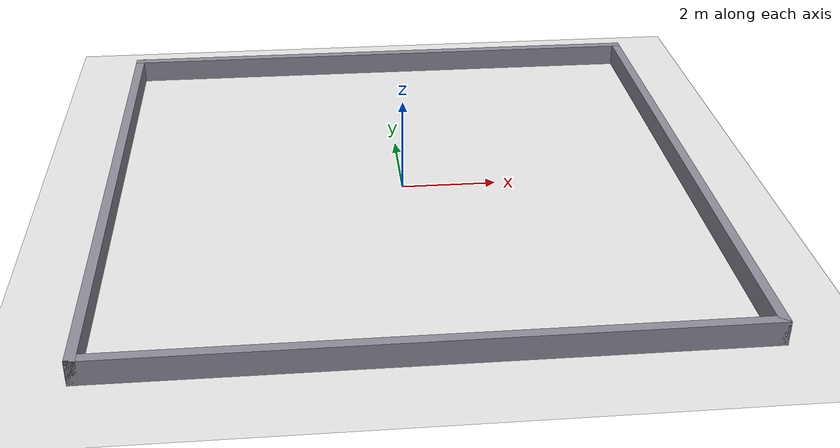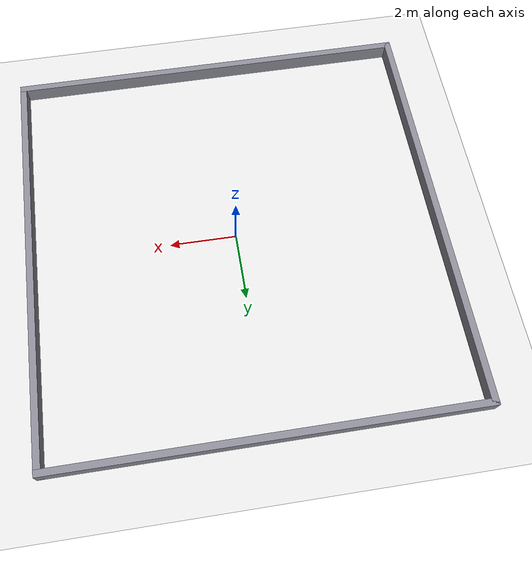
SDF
<?xml version="1.0" ?>
<!-- GENERATED by worlds/gen_worlds.py - do not edit by hand. -->
<sdf version="1.6">
  <world name="empty">
    <gravity>0 0 -9.8</gravity>
    <physics name="ode_500hz" type="ode">
      <max_step_size>0.002</max_step_size>
      <real_time_factor>1.0</real_time_factor>
      <real_time_update_rate>500</real_time_update_rate>
    </physics>

    <!-- ROS interface: exposes /get_entity_state and /set_entity_state (used by the episode runner) -->
    <plugin name="gazebo_ros_state" filename="libgazebo_ros_state.so">
      <ros><namespace>/</namespace></ros>
      <update_rate>10.0</update_rate>
    </plugin>

    <scene>
      <ambient>0.6 0.6 0.6 1</ambient>
      <background>0.85 0.9 0.95 1</background>
      <shadows>false</shadows>
    </scene>

    <light name="sun" type="directional">
      <cast_shadows>false</cast_shadows>
      <pose>0 0 10 0 0 0</pose>
      <diffuse>0.8 0.8 0.8 1</diffuse>
      <specular>0.2 0.2 0.2 1</specular>
      <direction>-0.3 0.2 -1.0</direction>
    </light>

    <model name="ground_plane">
      <static>true</static>
      <link name="link">
        <collision name="collision">
          <geometry><plane><normal>0 0 1</normal><size>40 40</size></plane></geometry>
          <surface><friction><ode><mu>100</mu><mu2>50</mu2></ode></friction></surface>
        </collision>
        <visual name="visual">
          <geometry><plane><normal>0 0 1</normal><size>40 40</size></plane></geometry>
          <material><ambient>0.9 0.9 0.9 1</ambient><diffuse>0.9 0.9 0.9 1</diffuse></material>
        </visual>
      </link>
    </model>

    <model name="wall_north">
      <static>true</static>
      <pose>0.0000 6.1000 0.2500 0 0 0.0000</pose>
      <link name="link">
        <collision name="collision"><geometry><box><size>12.4000 0.2000 0.5000</size></box></geometry></collision>
        <visual name="visual"><geometry><box><size>12.4000 0.2000 0.5000</size></box></geometry>
          <material><ambient>0.55 0.55 0.6 1</ambient><diffuse>0.55 0.55 0.6 1</diffuse></material></visual>
      </link>
    </model>
    <model name="wall_south">
      <static>true</static>
      <pose>0.0000 -6.1000 0.2500 0 0 0.0000</pose>
      <link name="link">
        <collision name="collision"><geometry><box><size>12.4000 0.2000 0.5000</size></box></geometry></collision>
        <visual name="visual"><geometry><box><size>12.4000 0.2000 0.5000</size></box></geometry>
          <material><ambient>0.55 0.55 0.6 1</ambient><diffuse>0.55 0.55 0.6 1</diffuse></material></visual>
      </link>
    </model>
    <model name="wall_east">
      <static>true</static>
      <pose>6.1000 0.0000 0.2500 0 0 0.0000</pose>
      <link name="link">
        <collision name="collision"><geometry><box><size>0.2000 12.4000 0.5000</size></box></geometry></collision>
        <visual name="visual"><geometry><box><size>0.2000 12.4000 0.5000</size></box></geometry>
          <material><ambient>0.55 0.55 0.6 1</ambient><diffuse>0.55 0.55 0.6 1</diffuse></material></visual>
      </link>
    </model>
    <model name="wall_west">
      <static>true</static>
      <pose>-6.1000 0.0000 0.2500 0 0 0.0000</pose>
      <link name="link">
        <collision name="collision"><geometry><box><size>0.2000 12.4000 0.5000</size></box></geometry></collision>
        <visual name="visual"><geometry><box><size>0.2000 12.4000 0.5000</size></box></geometry>
          <material><ambient>0.55 0.55 0.6 1</ambient><diffuse>0.55 0.55 0.6 1</diffuse></material></visual>
      </link>
    </model>

    <!-- top-down camera for rendered (GUI) runs; ignored by gzserver -->
    <gui fullscreen="0">
      <camera name="user_camera">
        <pose>0 0 13 0 1.5708 0</pose>
        <view_controller>orbit</view_controller>
        <projection_type>perspective</projection_type>
      </camera>
    </gui>
  </world>
</sdf>
